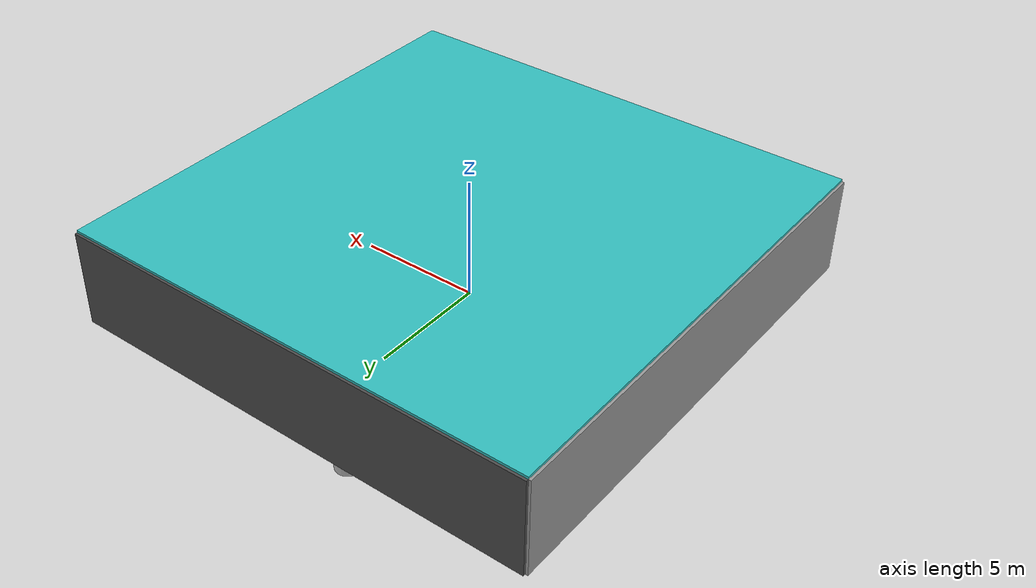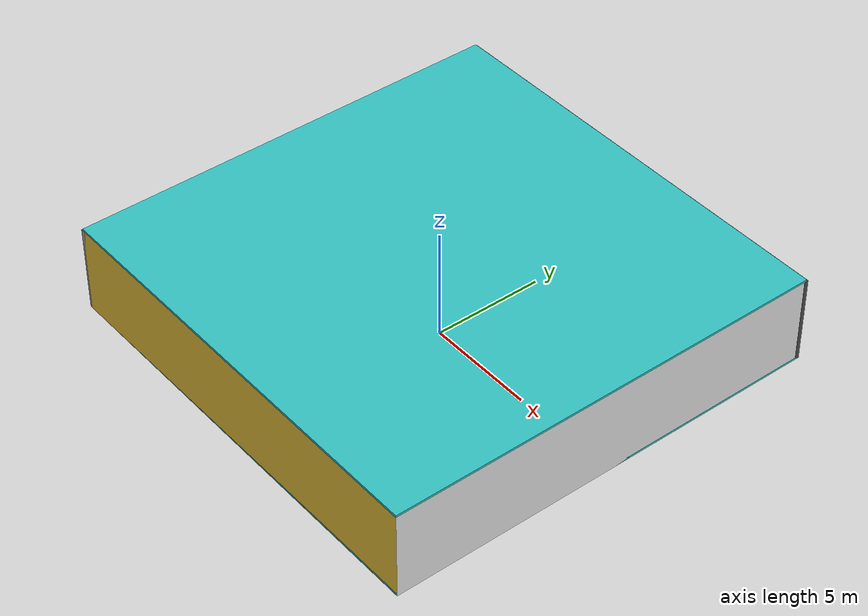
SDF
<sdf version="1.4">
 <world name="default">
  <physics type="ode">
   <max_step_size>0.001</max_step_size>
   <real_time_factor>1</real_time_factor>
   <real_time_update_rate>1000</real_time_update_rate>
   <gravity>0 0 -9.8</gravity>
  </physics>
  <scene><ambient>0.4 0.4 0.4 1</ambient><background>0.7 0.7 0.7 1</background><shadows>1</shadows></scene>
  <model name="Surrounding">
   <static>1</static>
   <link name="Ceiling">
    <collision name="Ceiling_Collision"><geometry><box><size>20 20 0.1</size></box></geometry></collision>
    <visual name="Ceiling_Visual">
     <geometry><box><size>20 20 0.1</size></box></geometry>
     <material>
      <script><uri>file://media/materials/scripts/gazebo.material</uri><name>Gazebo/TurquoiseGlow</name></script>
     </material>
    </visual>
    <pose>0 0 4.05 0 0 0</pose>
   </link>
   <link name="Wall_South">
    <collision name="Wall_South_Collision">
     <geometry><box><size>20 0 4</size></box></geometry>
     <pose>0 0 2 0 -0 0</pose>
    </collision>
    <visual name="Wall_South_Visual">
     <pose>0 0 2 0 -0 0</pose>
     <geometry><box><size>20 0 4</size></box></geometry>
     <material>
      <script><uri>file://media/materials/scripts/gazebo.material</uri><name>Gazebo/Gold</name></script>
     </material>
    </visual>
    <velocity_decay><linear>0</linear><angular>0</angular></velocity_decay>
    <pose>0 -10 0 0 -0 0</pose>
   </link>
   <link name="Wall_East">
    <collision name="Wall_21_Collision">
     <geometry><box><size>20 0 4</size></box></geometry>
     <pose>0 0 2 0 -0 0</pose>
    </collision>
    <visual name="Wall_21_Visual">
     <pose>0 0 2 0 -0 0</pose>
     <geometry><box><size>20 0 4</size></box></geometry>
     <material>
      <script><uri>file://media/materials/scripts/gazebo.material</uri><name>Gazebo/WhiteGlow</name></script>
     </material>
    </visual>
    <velocity_decay><linear>0</linear><angular>0</angular></velocity_decay>
    <pose>10 0 0 0 -0 1.5708</pose>
   </link>
   <link name="Wall_North">
    <collision name="Wall_22_Collision">
     <geometry><box><size>20 0.2 4</size></box></geometry>
     <pose>0 0 2 0 -0 0</pose>
    </collision>
    <visual name="Wall_22_Visual">
     <pose>0 0 2 0 -0 0</pose>
     <geometry><box><size>20 0.2 4</size></box></geometry>
     <material>
      <script><uri>file://media/materials/scripts/gazebo.material</uri><name>Gazebo/DarkGrey</name></script>
     </material>
    </visual>
    <velocity_decay><linear>0</linear><angular>0</angular></velocity_decay>
    <pose>0 10 0 0 -0 0</pose>
   </link>
   <link name="Wall_West">
    <collision name="Wall_23_Collision">
     <geometry><box><size>20 0.2 4</size></box></geometry>
     <pose>0 0 2 0 -0 0</pose>
    </collision>
    <visual name="Wall_23_Visual">
     <pose>0 0 2 0 -0 0</pose>
     <geometry><box><size>20 0.2 4</size></box></geometry>
     <material>
      <script><uri>file://media/materials/scripts/gazebo.material</uri><name>Gazebo/Grey</name></script>
     </material>
    </visual>
    <velocity_decay><linear>0</linear><angular>0</angular></velocity_decay>
    <pose>-10 0 0 0 0 -1.5708</pose>
   </link>
   <link name="Ground_link">
    <collision name="collision">
     <pose>0 0 .05 0 -0 0</pose>
     <geometry><box><size>20 20 0.1</size></box></geometry>
    </collision>
    <visual name="visual">
     <pose>0 0 .05 0 -0 0</pose>
     <geometry><box><size>20 20 0.1</size></box></geometry>
     <material>
      <script>
       <uri>file://media/materials/scripts/gazebo.material</uri>
       <name>Gazebo/TurquoiseGlowOutline</name>
      </script>
     </material>
    </visual>
   </link>
   <static>1</static>
  </model>
  <spherical_coordinates>
   <surface_model>EARTH_WGS84</surface_model>
   <latitude_deg>0</latitude_deg>
   <longitude_deg>0</longitude_deg>
   <elevation>0</elevation>
   <heading_deg>0</heading_deg>
  </spherical_coordinates>
  <light name="lightball_0" type="diffuse">
   <diffuse>0.8 0.8 0.8 1</diffuse>
   <specular>0.2 0.2 0.2 1</specular>
   <attenuation>
    <range>100</range>
    <constant>0.7</constant>
    <linear>0.01</linear>
    <quadratic>0.001</quadratic>
   </attenuation>
   <direction>-0.5 0.1 -0.9</direction>
   <pose>-0.0388600087263 -3.24855957369 3.59130034568 0 0 0</pose>
  </light>
  <light name="lightball_1" type="diffuse">
   <diffuse>0.8 0.8 0.8 1</diffuse>
   <specular>0.2 0.2 0.2 1</specular>
   <attenuation>
    <range>100</range>
    <constant>0.7</constant>
    <linear>0.01</linear>
    <quadratic>0.001</quadratic>
   </attenuation>
   <direction>-0.5 0.1 -0.9</direction>
   <pose>-0.221033659755 -9.36677961116 2.41098367221 0 0 0</pose>
  </light>
  <light name="lightball_2" type="diffuse">
   <diffuse>0.8 0.8 0.8 1</diffuse>
   <specular>0.2 0.2 0.2 1</specular>
   <attenuation>
    <range>100</range>
    <constant>0.7</constant>
    <linear>0.01</linear>
    <quadratic>0.001</quadratic>
   </attenuation>
   <direction>-0.5 0.1 -0.9</direction>
   <pose>6.15433332083 0.803600606081 1.15653126185 0 0 0</pose>
  </light>
  <include>
   <uri>model://robocup_3Dsim_goal</uri>
   <pose>-7.47657560116 -7.81936500901 0 0 0 3.06487937008</pose>
  </include>
  <include>
   <uri>model://robocup_3Dsim_goal</uri>
   <pose>-6.62162930687 -4.97511316465 0 0 0 0.621410181891</pose>
  </include>
  <include><uri>model://table</uri><pose>-8.60387292341 -2.48571131267 0 0 0 0.383507903052</pose></include>
  <include>
   <uri>model://textured_shapes</uri>
   <pose>-7.13470917627 5.15149347748 0 0 0 2.31380063817</pose>
  </include>
  <include><uri>model://table</uri><pose>-5.47986730725 -3.91727733273 0 0 0 2.53045599543</pose></include>
  <include>
   <uri>model://textured_shapes</uri>
   <pose>-1.94428301476 8.03796271496 0 0 0 0.243900171025</pose>
  </include>
  <include><uri>model://cabinet</uri><pose>6.93528846918 -1.37293228556 0 0 0 0.990485774228</pose></include>
 </world>
</sdf>

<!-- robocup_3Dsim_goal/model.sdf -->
<sdf version="1.5">
  <model name="robocup_3d_goal">
    <static>true</static>
    <link name="left_post">
      <pose>0 1.05 0.45 0 0 0</pose>
      <collision name="collision">
        <geometry>
          <cylinder>
            <radius>0.05</radius>
            <length>0.9</length>
          </cylinder>
        </geometry>
      </collision>
      <visual name="visual">
        <geometry>
          <cylinder>
            <radius>0.05</radius>
            <length>0.9</length>
          </cylinder>
        </geometry>
        <material>
          <script>
            <uri>file://media/materials/scripts/gazebo.material</uri>
            <name>Gazebo/ZincYellow</name>
          </script>
        </material>
      </visual>
    </link>
    <link name="left_support_horiz_lower">
      <pose>0.30 1.05 0.01 0 0 0</pose>
      <collision name="collision">
        <geometry>
          <box>
            <size>0.50 0.02 0.02</size>
          </box>
        </geometry>
      </collision>
      <visual name="visual">
        <geometry>
          <box>
            <size>0.50 0.02 0.02</size>
          </box>
        </geometry>
        <material>
          <script>
            <uri>file://media/materials/scripts/gazebo.material</uri>
            <name>Gazebo/White</name>
          </script>
        </material>
      </visual>
    </link>
    <link name="left_support_horiz_upper">
      <pose>0.30 1.05 0.79 0 0 0</pose>
      <collision name="collision">
        <geometry>
          <box>
            <size>0.50 0.02 0.02</size>
          </box>
        </geometry>
      </collision>
      <visual name="visual">
        <geometry>
          <box>
            <size>0.50 0.02 0.02</size>
          </box>
        </geometry>
        <material>
          <script>
            <uri>file://media/materials/scripts/gazebo.material</uri>
            <name>Gazebo/White</name>
          </script>
        </material>
      </visual>
    </link>
    <link name="left_support_vertical">
      <pose>0.56 1.05 0.4 0 1.5708 0</pose>
      <collision name="collision">
        <geometry>
          <box>
            <size>0.80 0.02 0.02</size>
          </box>
        </geometry>
      </collision>
      <visual name="visual">
        <geometry>
          <box>
            <size>0.80 0.02 0.02</size>
          </box>
        </geometry>
        <material>
          <script>
            <uri>file://media/materials/scripts/gazebo.material</uri>
            <name>Gazebo/White</name>
          </script>
        </material>
      </visual>
    </link>
    <link name="right_support_horiz_lower">
      <pose>0.30 -1.05 0.01 0 0 0</pose>
      <collision name="collision">
        <geometry>
          <box>
            <size>0.50 0.02 0.02</size>
          </box>
        </geometry>
      </collision>
      <visual name="visual">
        <geometry>
          <box>
            <size>0.50 0.02 0.02</size>
          </box>
        </geometry>
        <material>
          <script>
            <uri>file://media/materials/scripts/gazebo.material</uri>
            <name>Gazebo/White</name>
          </script>
        </material>
      </visual>
    </link>
    <link name="right_support_horiz_upper">
      <pose>0.30 -1.05 0.79 0 0 0</pose>
      <collision name="collision">
        <geometry>
          <box>
            <size>0.50 0.02 0.02</size>
          </box>
        </geometry>
      </collision>
      <visual name="visual">
        <geometry>
          <box>
            <size>0.50 0.02 0.02</size>
          </box>
        </geometry>
        <material>
          <script>
            <uri>file://media/materials/scripts/gazebo.material</uri>
            <name>Gazebo/White</name>
          </script>
        </material>
      </visual>
    </link>
    <link name="right_support_vertical">
      <pose>0.56 -1.05 0.4 0 1.5708 0</pose>
      <collision name="collision">
        <geometry>
          <box>
            <size>0.80 0.02 0.02</size>
          </box>
        </geometry>
      </collision>
      <visual name="visual">
        <geometry>
          <box>
            <size>0.80 0.02 0.02</size>
          </box>
        </geometry>
        <material>
          <script>
            <uri>file://media/materials/scripts/gazebo.material</uri>
            <name>Gazebo/White</name>
          </script>
        </material>
      </visual>
    </link>
    <link name="center_support_horiz_lower">
      <pose>0.56 0 0.01 0 1.5708 0</pose>
      <collision name="collision">
        <geometry>
          <box>
            <size>0.02 2.08 0.02</size>
          </box>
        </geometry>
      </collision>
      <visual name="visual">
        <geometry>
          <box>
            <size>0.02 2.08 0.02</size>
          </box>
        </geometry>
        <material>
          <script>
            <uri>file://media/materials/scripts/gazebo.material</uri>
            <name>Gazebo/White</name>
          </script>
        </material>
      </visual>
    </link>
    <link name="center_support_horiz_upper">
      <pose>0.56 0 0.79 0 1.5708 0</pose>
      <collision name="collision">
        <geometry>
          <box>
            <size>0.02 2.08 0.02</size>
          </box>
        </geometry>
      </collision>
      <visual name="visual">
        <geometry>
          <box>
            <size>0.02 2.08 0.02</size>
          </box>
        </geometry>
        <material>
          <script>
            <uri>file://media/materials/scripts/gazebo.material</uri>
            <name>Gazebo/White</name>
          </script>
        </material>
      </visual>
    </link>
    <link name="right_post">
      <pose>0 -1.05 0.45 0 0 0</pose>
      <collision name="collision">
        <geometry>
          <cylinder>
            <radius>0.05</radius>
            <length>0.9</length>
          </cylinder>
        </geometry>
      </collision>
      <visual name="visual">
        <geometry>
          <cylinder>
            <radius>0.05</radius>
            <length>0.9</length>
          </cylinder>
        </geometry>
        <material>
          <script>
            <uri>file://media/materials/scripts/gazebo.material</uri>
            <name>Gazebo/ZincYellow</name>
          </script>
        </material>
      </visual>
    </link>
    <link name="crossbar">
      <pose>0 0 0.85 1.57 1.57 0</pose>
      <collision name="collision">
        <geometry>
          <cylinder>
            <radius>0.05</radius>
            <length>2.0</length>
          </cylinder>
        </geometry>
      </collision>
      <visual name="visual">
        <geometry>
          <cylinder>
            <radius>0.05</radius>
            <length>2.0</length>
          </cylinder>
        </geometry>
        <material>
          <script>
            <uri>file://media/materials/scripts/gazebo.material</uri>
            <name>Gazebo/ZincYellow</name>
          </script>
        </material>
      </visual>
    </link>
    <link name="center_net">
      <pose>0.56 0 0.40 0 0 0</pose>
      <collision name="collision">
        <geometry>
          <box>
            <size>0.01 2.1 0.80</size>
          </box>
        </geometry>
      </collision>
      <visual name="visual">
        <geometry>
          <box>
            <size>0.01 2.1 0.80</size>
          </box>
        </geometry>
        <material>
          <script>
            <uri>model://../model_source/models/robocup09_spl_field/materials/scripts/</uri>
            <uri>model://../model_source/models/robocup09_spl_field/materials/textures/</uri>
            <name>RoboCup/Net</name>
          </script>
        </material>
      </visual>
    </link>
    <link name="left_net">
      <pose>0.30 1.05 0.40 0 0 0</pose>
      <collision name="collision">
        <geometry>
          <box>
            <size>0.50 0.01 0.76</size>
          </box>
        </geometry>
      </collision>
      <visual name="visual">
        <geometry>
          <box>
            <size>0.50 0.01 0.76</size>
          </box>
        </geometry>
        <material>
          <script>
            <uri>model://../model_source/models/robocup09_spl_field/materials/scripts/</uri>
            <uri>model://../model_source/models/robocup09_spl_field/materials/textures/</uri>
            <name>RoboCup/Net</name>
          </script>
        </material>
      </visual>
    </link>
    <link name="right_net">
      <pose>0.30 -1.05 0.40 0 0 0</pose>
      <collision name="collision">
        <geometry>
          <box>
            <size>0.50 0.01 0.76</size>
          </box>
        </geometry>
      </collision>
      <visual name="visual">
        <geometry>
          <box>
            <size>0.50 0.01 0.76</size>
          </box>
        </geometry>
        <material>
          <script>
            <uri>model://../model_source/models/robocup09_spl_field/materials/scripts/</uri>
            <uri>model://../model_source/models/robocup09_spl_field/materials/textures/</uri>
            <name>RoboCup/Net</name>
          </script>
        </material>
      </visual>
    </link>
  </model>
</sdf>

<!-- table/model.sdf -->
<sdf version="1.5">
  <model name="table">
    <static>true</static>
    <link name="link">
      <collision name="surface">
        <pose>0 0 1.0 0 0 0</pose>
        <geometry>
          <box>
            <size>1.5 0.8 0.03</size>
          </box>
        </geometry>
        <surface>
          <friction>
            <ode>
              <mu>0.6</mu>
              <mu2>0.6</mu2>
            </ode>
          </friction>
        </surface>
      </collision>
      <visual name="visual1">
        <pose>0 0 1.0 0 0 0</pose>
        <geometry>
          <box>
            <size>1.5 0.8 0.03</size>
          </box>
        </geometry>
        <material>
          <script>
            <uri>model://media/materials/scripts/gazebo.material</uri>
            <name>Gazebo/Wood</name>
          </script>
        </material>
      </visual>
      <collision name="front_left_leg">
        <pose>0.68 0.38 0.5 0 0 0</pose>
        <geometry>
          <cylinder>
            <radius>0.02</radius>
            <length>1.0</length>
          </cylinder>
        </geometry>
      </collision>
      <visual name="front_left_leg">
        <pose>0.68 0.38 0.5 0 0 0</pose>
        <geometry>
          <cylinder>
            <radius>0.02</radius>
            <length>1.0</length>
          </cylinder>
        </geometry>
        <material>
          <script>
            <uri>model://media/materials/scripts/gazebo.material</uri>
            <name>Gazebo/Grey</name>
          </script>
        </material>
      </visual>
      <collision name="front_right_leg">
        <pose>0.68 -0.38 0.5 0 0 0</pose>
        <geometry>
          <cylinder>
            <radius>0.02</radius>
            <length>1.0</length>
          </cylinder>
        </geometry>
      </collision>
      <visual name="front_right_leg">
        <pose>0.68 -0.38 0.5 0 0 0</pose>
        <geometry>
          <cylinder>
            <radius>0.02</radius>
            <length>1.0</length>
          </cylinder>
        </geometry>
        <material>
          <script>
            <uri>model://media/materials/scripts/gazebo.material</uri>
            <name>Gazebo/Grey</name>
          </script>
        </material>
      </visual>
      <collision name="back_right_leg">
        <pose>-0.68 -0.38 0.5 0 0 0</pose>
        <geometry>
          <cylinder>
            <radius>0.02</radius>
            <length>1.0</length>
          </cylinder>
        </geometry>
      </collision>
      <visual name="back_right_leg">
        <pose>-0.68 -0.38 0.5 0 0 0</pose>
        <geometry>
          <cylinder>
            <radius>0.02</radius>
            <length>1.0</length>
          </cylinder>
        </geometry>
        <material>
          <script>
            <uri>model://media/materials/scripts/gazebo.material</uri>
            <name>Gazebo/Grey</name>
          </script>
        </material>
      </visual>
      <collision name="back_left_leg">
        <pose>-0.68 0.38 0.5 0 0 0</pose>
        <geometry>
          <cylinder>
            <radius>0.02</radius>
            <length>1.0</length>
          </cylinder>
        </geometry>
      </collision>
      <visual name="back_left_leg">
        <pose>-0.68 0.38 0.5 0 0 0</pose>
        <geometry>
          <cylinder>
            <radius>0.02</radius>
            <length>1.0</length>
          </cylinder>
        </geometry>
        <material>
          <script>
            <uri>model://media/materials/scripts/gazebo.material</uri>
            <name>Gazebo/Grey</name>
          </script>
        </material>
      </visual>
    </link>
  </model>
</sdf>

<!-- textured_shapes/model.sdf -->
<sdf version="1.6">
  <model name="textured_shapes">
    <pose>0 0 0.5 0 0 0</pose>
    <link name="box">
      <pose>0 -1.5 0 0 0 0</pose>
      <collision name="collision">
        <geometry>
          <box>
            <size>1 1 1</size>
          </box>
        </geometry>
      </collision>
      <visual name="visual">
        <geometry>
          <box>
            <size>1 1 1</size>
          </box>
        </geometry>
        <material>
          <script>
            <uri>model://../model_source/models/textured_shapes/materials/scripts</uri>
            <uri>model://../model_source/models/textured_shapes/materials/textures</uri>
            <name>TexturedShape/Squares</name>
          </script>
        </material>
      </visual>
    </link>
    <link name="sphere">
      <collision name="collision">
        <geometry>
          <sphere>
            <radius>0.5</radius>
          </sphere>
        </geometry>
      </collision>
      <visual name="visual">
        <geometry>
          <sphere>
            <radius>0.5</radius>
          </sphere>
        </geometry>
        <material>
          <script>
            <uri>model://../model_source/models/textured_shapes/materials/scripts</uri>
            <uri>model://../model_source/models/textured_shapes/materials/textures</uri>
            <name>TexturedShape/Squares</name>
          </script>
        </material>
      </visual>
    </link>
    <link name="cylinder">
      <pose>0 1.5 0 0 0 0</pose>
      <collision name="collision">
        <geometry>
          <cylinder>
            <radius>0.5</radius>
            <length>1</length>
          </cylinder>
        </geometry>
      </collision>
      <visual name="visual">
        <geometry>
          <cylinder>
            <radius>0.5</radius>
            <length>1</length>
          </cylinder>
        </geometry>
        <material>
          <script>
            <uri>model://../model_source/models/textured_shapes/materials/scripts</uri>
            <uri>model://../model_source/models/textured_shapes/materials/textures</uri>
            <name>TexturedShape/Squares</name>
          </script>
        </material>
      </visual>
    </link>
  </model>
</sdf>

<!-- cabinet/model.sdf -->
<sdf version="1.5">
  <model name="cabinet">
    <static>true</static>
    <link name="cabinet_bottom_plate">
      <inertial>
        <pose>0 0 -1 0 0 0</pose>
        <inertia>
          <ixx>2.050000</ixx>
          <ixy>0</ixy>
          <ixz>0</ixz>
          <iyy>2.050000</iyy>
          <iyz>0</iyz>
          <izz>2.050000</izz>
        </inertia>
        <mass>25.000000</mass>
      </inertial>
      <collision name="cabinet_bottom_plate_geom">
        <pose>0 0 0.010000 0 0 0</pose>
        <geometry>
          <box>
            <size>0.450000 0.450000 0.020000</size>
          </box>
        </geometry>
      </collision>
      <visual name="cabinet_bottom_plate_geom_visual">
        <pose>0 0 0.010000 0 0 0</pose>
        <geometry>
          <box>
            <size>0.450000 0.450000 0.020000</size>
          </box>
        </geometry>
        <material>
          <script>
            <uri>model://media/materials/scripts/gazebo.material</uri>
            <name>Gazebo/Wood</name>
          </script>
        </material>
      </visual>
      <collision name="cabinet_bottom_plate_geom_cabinet_back_plate">
        <pose>0.235000 0 0.510000 0 0 0</pose>
        <geometry>
          <box>
            <size>0.020000 0.450000 1.020000</size>
          </box>
        </geometry>
      </collision>
      <visual name="cabinet_bottom_plate_geom_cabinet_back_plate_visual">
        <pose>0.235000 0 0.510000 0 0 0</pose>
        <geometry>
          <box>
            <size>0.020000 0.450000 1.020000</size>
          </box>
        </geometry>
        <material>
          <script>
            <uri>model://media/materials/scripts/gazebo.material</uri>
            <name>Gazebo/Wood</name>
          </script>
        </material>
      </visual>
      <collision name="cabinet_bottom_plate_geom_cabinet_left_plate">
        <pose>0 0.235000 0.510000 0 0 0</pose>
        <geometry>
          <box>
            <size>0.450000 0.020000 1.020000</size>
          </box>
        </geometry>
      </collision>
      <visual name="cabinet_bottom_plate_geom_cabinet_left_plate_visual">
        <pose>0 0.235000 0.510000 0 0 0</pose>
        <geometry>
          <box>
            <size>0.450000 0.020000 1.020000</size>
          </box>
        </geometry>
        <material>
          <script>
            <uri>model://media/materials/scripts/gazebo.material</uri>
            <name>Gazebo/Wood</name>
          </script>
        </material>
      </visual>
      <collision name="cabinet_bottom_plate_geom_cabinet_middle_plate">
        <pose>0 0 0.510000 0 0 0</pose>
        <geometry>
          <box>
            <size>0.450000 0.450000 0.020000</size>
          </box>
        </geometry>
      </collision>
      <visual name="cabinet_bottom_plate_geom_cabinet_middle_plate_visual">
        <pose>0 0 0.510000 0 0 0</pose>
        <geometry>
          <box>
            <size>0.450000 0.450000 0.020000</size>
          </box>
        </geometry>
        <material>
          <script>
            <uri>model://media/materials/scripts/gazebo.material</uri>
            <name>Gazebo/Wood</name>
          </script>
        </material>
      </visual>
      <collision name="cabinet_bottom_plate_geom_cabinet_right_plate">
        <pose>0 -0.235000 0.510000 0 0 0</pose>
        <geometry>
          <box>
            <size>0.450000 0.020000 1.020000</size>
          </box>
        </geometry>
      </collision>
      <visual name="cabinet_bottom_plate_geom_cabinet_right_plate_visual">
        <pose>0 -0.235000 0.510000 0 0 0</pose>
        <geometry>
          <box>
            <size>0.450000 0.020000 1.020000</size>
          </box>
        </geometry>
        <material>
          <script>
            <uri>model://media/materials/scripts/gazebo.material</uri>
            <name>Gazebo/Wood</name>
          </script>
        </material>
      </visual>
      <collision name="cabinet_bottom_plate_geom_cabinet_top_plate">
        <pose>0 0 1.010000 0 0 0</pose>
        <geometry>
          <box>
            <size>0.450000 0.450000 0.020000</size>
          </box>
        </geometry>
      </collision>
      <visual name="cabinet_bottom_plate_geom_cabinet_top_plate_visual">
        <pose>0 0 1.010000 0 0 0</pose>
        <geometry>
          <box>
            <size>0.450000 0.450000 0.020000</size>
          </box>
        </geometry>
        <material>
          <script>
            <uri>model://media/materials/scripts/gazebo.material</uri>
            <name>Gazebo/Wood</name>
          </script>
        </material>
      </visual>
    </link>
  </model>
</sdf>
